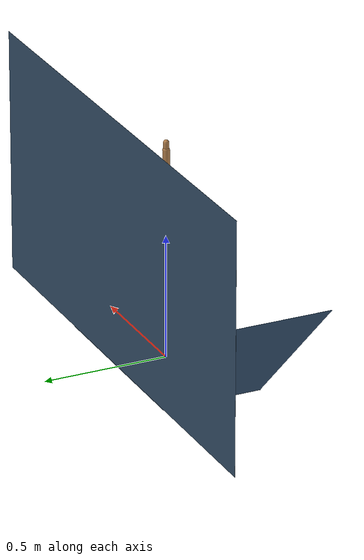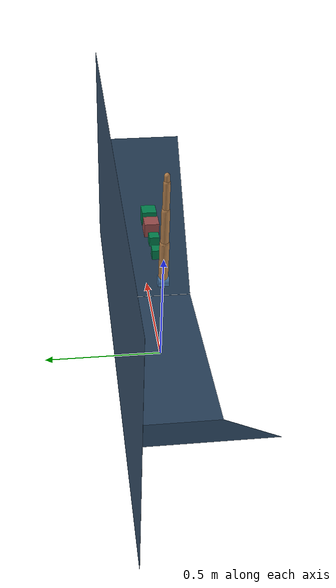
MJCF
<mujoco model="planar stacker">

  <include file="./common/visual.xml"/>
  <include file="./common/skybox.xml"/>
  <include file="./common/materials.xml"/>
  <asset>
    <texture name="background" builtin="flat" type="2d" mark="random" markrgb="1 1 1" width="800" height="800" rgb1=".2 .3 .4"/>
    <material name="background" texture="background" texrepeat="1 1" texuniform="true"/>
  </asset>

  <visual>
    <map shadowclip=".5"/>
    <quality shadowsize="2048"/>
  </visual>>

  <option timestep="0.001" cone="elliptic"/>

  <default>
    <!-- friction was .7 | 2 -->
    <geom friction="2" solimp="0.9 0.97 0.001" solref=".01 1"/>
    <joint solimplimit="0 0.99 0.01" solreflimit=".005 1"/>
    <general ctrllimited="true"/>
    <tendon width="0.01"/>
    <site size=".003 .003 .003" material="site" group="3"/>

    <default class="arm">
      <geom type="capsule" material="self" density="500"/>
      <joint type="hinge" pos="0 0 0" axis="0 -1 0" limited="true"/>
      <default class="hand">
        <joint damping=".5" range="-10 60"/>
        <geom size=".008"/>
        <site  type="box" size=".018 .005 .005" pos=".022 0 -.002" euler="0 15 0" group="4"/>
      </default>
    </default>

    <default class="object">
      <geom material="self_highlight"/>
    </default>

    <default class="object2">
      <geom material="target"/>
    </default>

    <default class="task">
      <site rgba="0 0 0 0"/>
    </default>

    <default class="obstacle">
      <geom material="decoration" friction="0"/>
    </default>

  </default>

  <worldbody>
    <!-- Arena -->
    <light name="light" directional="true" diffuse=".6 .6 .6" pos="0 0 1" specular=".3 .3 .3"/>
    <geom name="floor" type="plane" pos="0 0 0" size=".4 .2 10" material="grid"/>
    <geom name="wall1" type="plane" pos="-.682843 0 .282843" size=".4 .2 10" material="grid" zaxis="1 0 1"/>
    <geom name="wall2" type="plane" pos=".682843 0 .282843" size=".4 .2 10" material="grid" zaxis="-1 0 1"/>
    <geom name="background" type="plane" pos="0 .2 .5" size="1 .5 10" material="background" zaxis="0 -1 0"/>
    <camera name="fixed" pos="0 -16 .4" xyaxes="1 0 0 0 0 1" fovy="4"/>

    <!-- Arm -->
    <geom name="arm_root" type="cylinder" fromto="0 -.022 .4 0 .022 .4" size=".024"
          material="decoration" contype="0" conaffinity="0"/>
    <body name="upper_arm" pos="0 0 .4" childclass="arm">
      <joint name="arm_root" damping="2" limited="false"/>
      <geom  name="upper_arm"  size=".02" fromto="0 0 0 0 0 .18"/>
      <body  name="middle_arm" pos="0 0 .18" childclass="arm">
        <joint name="arm_shoulder" damping="1.5" range="-160 160"/>
        <geom  name="middle_arm"  size=".017" fromto="0 0 0 0 0 .15"/>
        <body  name="lower_arm" pos="0 0 .15">
          <joint name="arm_elbow" damping="1" range="-160 160"/>
          <geom  name="lower_arm" size=".014" fromto="0 0 0 0 0 .12"/>
          <body  name="hand" pos="0 0 .12">
            <geom  name="hand" size=".011" fromto="0 0 0 0 0 .03"/>
            <site  name="palm_touch" type="box" group="4" size=".025 .005 .008" pos="0 0 .043"/>

          </body>
        </body>
      </body>
    </body>

    <!-- props -->
    <!-- mass was .7 | 1.5-->
    <body name="box0" pos=".5 0 .4" childclass="object">
      <joint name="box0_x" type="slide" axis="1 0 0" ref=".5"/>
      <joint name="box0_z" type="slide" axis="0 0 1" ref=".4"/>
      <joint name="box0_y" type="hinge" axis="0 1 0"/>
      <geom  name="box0" type="box" size=".033 .033 .033" mass="1.5" />
      <site  name="box0" type="sphere"/>
      <camera name="first_box" pos="0 -2 0" xyaxes="1 0 0 0 0 1" fovy="4" mode="track"/>
    </body>

    <body name="box1" pos=".4 0 .4" childclass="object2">
      <joint name="box1_x" type="slide" axis="1 0 0" ref=".4"/>
      <joint name="box1_z" type="slide" axis="0 0 1" ref=".4"/>
      <joint name="box1_y" type="hinge" axis="0 1 0"/>
      <geom  name="box1" type="box" size=".033 .033 .033"  mass="20"/>
      <site  name="box1" type="sphere"/>
    </body>

    <body name="box2" pos=".3 0 .4" childclass="object">
      <joint name="box2_x" type="slide" axis="1 0 0" ref=".3"/>
      <joint name="box2_z" type="slide" axis="0 0 1" ref=".4"/>
      <joint name="box2_y" type="hinge" axis="0 1 0"/>
      <geom  name="box2" type="box" size=".022 .022 .022" />
      <site  name="box2" type="sphere"/>
    </body>

    <body name="box3" pos=".2 0 .4" childclass="object">
      <joint name="box3_x" type="slide" axis="1 0 0" ref=".2"/>
      <joint name="box3_z" type="slide" axis="0 0 1" ref=".4"/>
      <joint name="box3_y" type="hinge" axis="0 1 0"/>
      <geom  name="box3" type="box" size=".022 .022 .022" />
      <site  name="box3" type="sphere"/>
    </body>

  </worldbody>

  <equality>
    <distance geom1="hand" geom2="box0" distance="0"  solimp="0.95 0.99 0.001" solref=".005 .5"/>
  </equality>

  <sensor>
    <touch name="palm_touch" site="palm_touch"/>
  </sensor>

  <actuator>
    <motor name="root"     joint="arm_root"     ctrlrange="-1 1"  gear="12"/>
    <motor name="shoulder" joint="arm_shoulder" ctrlrange="-1 1"  gear="8"/>
    <motor name="elbow"    joint="arm_elbow"    ctrlrange="-1 1"  gear="4"/>
  </actuator>

</mujoco>

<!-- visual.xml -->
<mujoco>
    <visual>
        <headlight ambient=".4 .4 .4" diffuse=".8 .8 .8" specular="0.1 0.1 0.1"/>
        <map znear=".01"/>
        <quality shadowsize="2048"/>
    </visual>
</mujoco>

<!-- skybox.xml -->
<mujoco>
    <asset>
        <texture name="skybox" type="skybox" builtin="gradient" rgb1=".4 .6 .8" rgb2="0 0 0"
                 width="800" height="800" mark="random" markrgb="1 1 1"/>
    </asset>
</mujoco>

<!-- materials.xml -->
<!--
Common textures, colors and materials to be used throughout this suite. Some
materials such as xxx_highlight are activated on occurence of certain events,
for example receiving a positive reward.
-->
<mujoco>
    <asset>
        <texture name="grid" type="2d" builtin="checker" rgb1=".1 .2 .3" rgb2=".2 .3 .4" width="300" height="300" mark="edge" markrgb=".2 .3 .4"/>
        <material name="grid" texture="grid" texrepeat="1 1" texuniform="true" reflectance=".2"/>
        <material name="self" rgba=".7 .5 .3 1"/>
        <material name="self_default" rgba=".7 .5 .3 1"/>
        <material name="self_highlight" rgba="0 .5 .3 1"/>
        <material name="effector" rgba=".7 .4 .2 1"/>
        <material name="effector_default" rgba=".7 .4 .2 1"/>
        <material name="effector_highlight" rgba="0 .5 .3 1"/>
        <material name="decoration" rgba=".3 .5 .7 1"/>
        <material name="eye" rgba="0 .2 1 1"/>
        <material name="target" rgba=".6 .3 .3 1"/>
        <material name="target_default" rgba=".6 .3 .3 1"/>
        <material name="target_highlight" rgba=".6 .3 .3 .4"/>
        <material name="site" rgba=".5 .5 .5 .3"/>
    </asset>
</mujoco>
